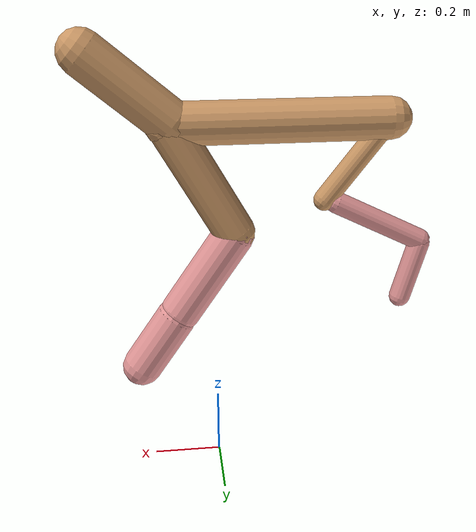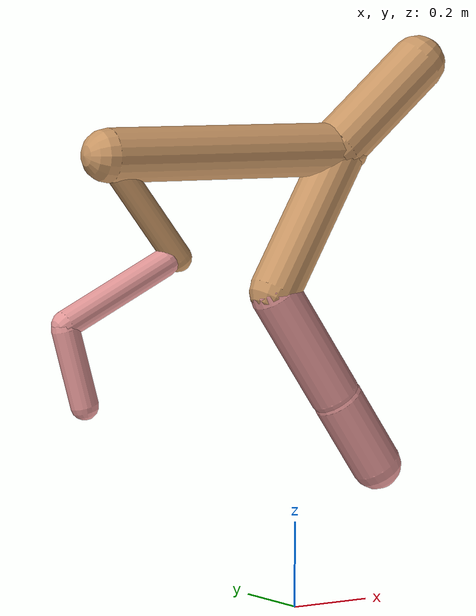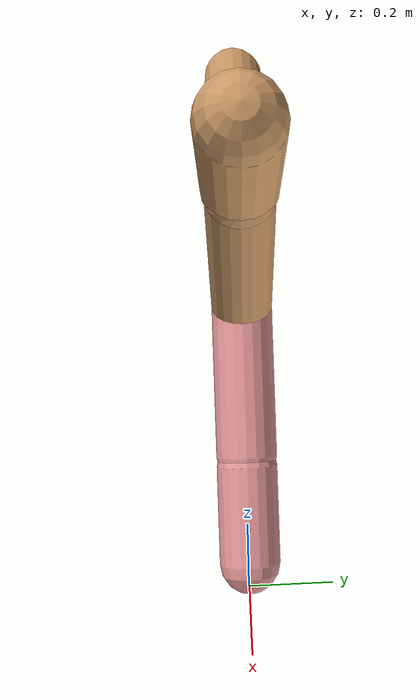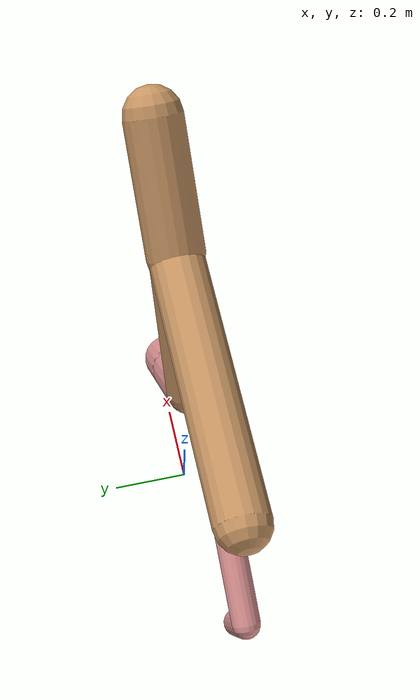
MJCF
<mujoco model="cheetah">
  <compiler angle="radian" coordinate="local" inertiafromgeom="true" settotalmass="14" />
  <default>
    <joint armature=".1" damping=".01" limited="true" solimplimit="0 .8 .03" solreflimit=".02 1" stiffness="8" />
    <geom conaffinity="0" condim="3" contype="1" friction="0.8 .1 .1" rgba="0.8 0.6 .4 1" solimp="0.0 0.8 0.01" solref="0.02 1" />
    <motor ctrllimited="true" ctrlrange="-1 1" />
  </default>
  <size nstack="300000" nuser_geom="1" />
  <option gravity="0 0 -9.81" timestep="0.01" />
  <worldbody>
    <body name="torso" pos="0.0 0.0 1.0625010433822377">
      <joint armature="0" axis="1 0 0" damping="0" limited="false" name="ignorex" pos="0 0 0" stiffness="0" type="slide" />
      <joint armature="0" axis="0 0 1" damping="0" limited="false" name="ignorez" pos="0 0 0" stiffness="0" type="slide" />
      <joint armature="0" axis="0 1 0" damping="0" limited="false" name="ignorey" pos="0 0 0" stiffness="0" type="hinge" />
      <geom fromto="-0.5 0.0 0.0 0.12924416986938447 0.0 0.0" name="torso" size="0.061732488195703504" type="capsule" />
      <geom axisangle="0 1 0 .87" name="head" pos="0.22924416986938445 0.0 0.1" size="0.06587477412941363 0.15" type="capsule" />

      <body name="bthigh" pos="-.5 0 0">
        <joint axis="0 1 0" damping="6" name="bthigh" pos="0 0 0" range="-.52 1.05" stiffness="240" type="hinge" />
        <geom axisangle="0 1 0 -3.8" name="bthigh" pos="0.09622849272839314 0.0 -0.12509704054691106" size="0.0322 0.13881426815175296" type="capsule" />
        <body name="bshin" pos="0.15245698545678626 0.0 -0.24019408109382215">
          <joint axis="0 1 0" damping="4.5" name="bshin" pos="0 0 0" range="-.785 .785" stiffness="180" type="hinge" />
          <geom axisangle="0 1 0 -2.03" name="bshin" pos="-0.1342765309365797 0.0 -0.06713826546828985" rgba="0.9 0.6 0.6 1" size="0.0322 0.14360096705353756" type="capsule" />
          <body name="bfoot" pos="-0.2685530618731594 0.0 -0.1342765309365797">
            <joint axis="0 1 0" damping="3" name="bfoot" pos="0 0 0" range="-.4 .785" stiffness="120" type="hinge" />
            <geom axisangle="0 1 0 -.27" name="bfoot" pos="0.02881514849189279 0.0 -0.0931689801237867" rgba="0.9 0.6 0.6 1" size="0.0322 0.0899899393535502" type="capsule" />
            <inertial mass="10" />
          </body>
        </body>
      </body>
      <body name="fthigh" pos="0.12924416986938447 0.0 0.0">
        <joint axis="0 1 0" damping="4.5" name="fthigh" pos="0 0 0" range="-1.5 0.8" stiffness="180" type="hinge" />
        <geom axisangle="0 1 0 .52" name="fthigh" pos="-0.09541103738512595 0.0 -0.1635617783745016" size="0.05981490419962867 0.18343163051238243" type="capsule" />
        <body name="fshin" pos="-0.1908220747702519 0.0 -0.3271235567490032">
          <joint axis="0 1 0" damping="3" name="fshin" pos="0 0 0" range="-1.2 1.1" stiffness="120" type="hinge" />
          <geom axisangle="0 1 0 -.6" name="fshin" pos="0.0885329908847872 0.0 -0.12258414122508995" rgba="0.9 0.6 0.6 1" size="0.05981490419962867 0.14619363033317698" type="capsule" />
          <body name="ffoot" pos="0.1770659817695744 0.0 -0.2451682824501799">
            <joint axis="0 1 0" damping="1.5" name="ffoot" pos="0 0 0" range="-3.1 -0.3" stiffness="60" type="hinge" />
            <geom axisangle="0 1 0 -.6" name="ffoot" pos="0.059353308969414875 0.0 -0.09232736950797871" rgba="0.9 0.6 0.6 1" size="0.05981490419962867 0.09654296342756971" type="capsule" />
            <inertial mass="10" />
          </body>
        </body>
      </body>
    </body>
  </worldbody>
  <actuator>
    <motor gear="120" joint="bthigh" name="bthigh" />
    <motor gear="90" joint="bshin" name="bshin" />
    <motor gear="60" joint="bfoot" name="bfoot" />
    <motor gear="120" joint="fthigh" name="fthigh" />
    <motor gear="60" joint="fshin" name="fshin" />
    <motor gear="30" joint="ffoot" name="ffoot" />
  </actuator>
</mujoco>
